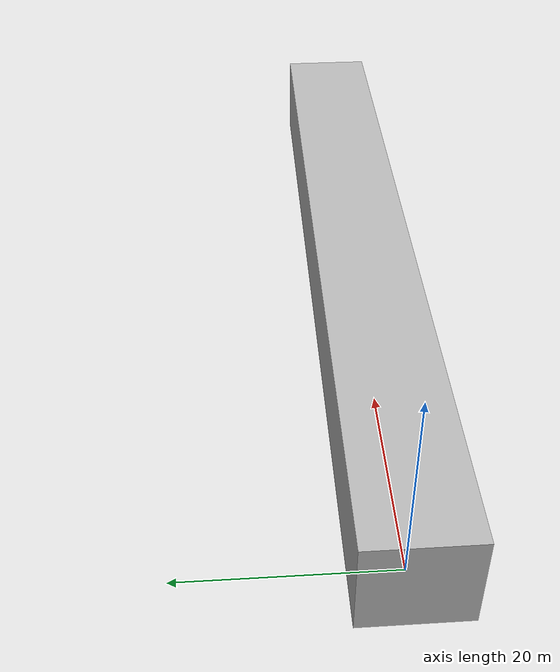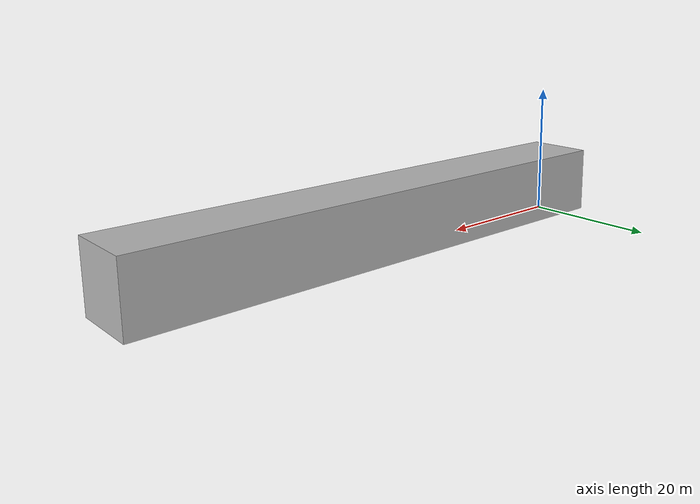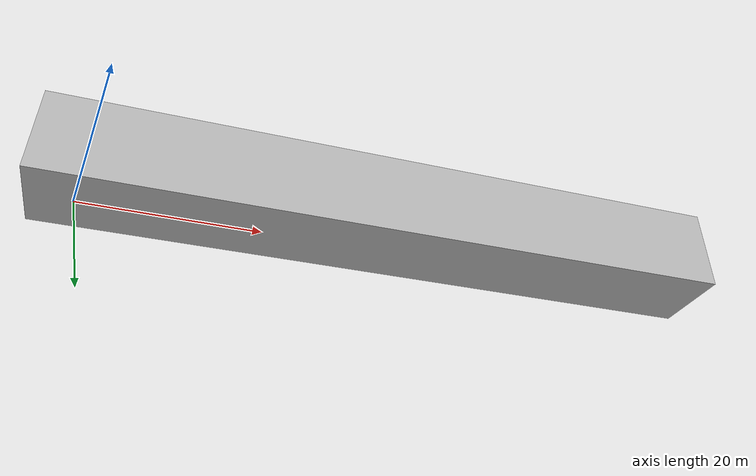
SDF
<?xml version="1.0"?>
<sdf version="1.5">
  <model name= "bwt_8comp_big" >
    <static>true</static>
    <link name="link">
      <collision name="collision">
        <geometry>
          <mesh>
            <uri>model://bwt_8comp_big/meshes/8_comp_longs_v2.stl</uri>
          </mesh>
        </geometry>
      </collision>
      <visual name="visual">
        <geometry>
          <mesh>
            <uri>model://bwt_8comp_big/meshes/8_comp_longs_v2.stl</uri>
          </mesh>
        </geometry>
      </visual>
    </link>
  </model>
</sdf>
